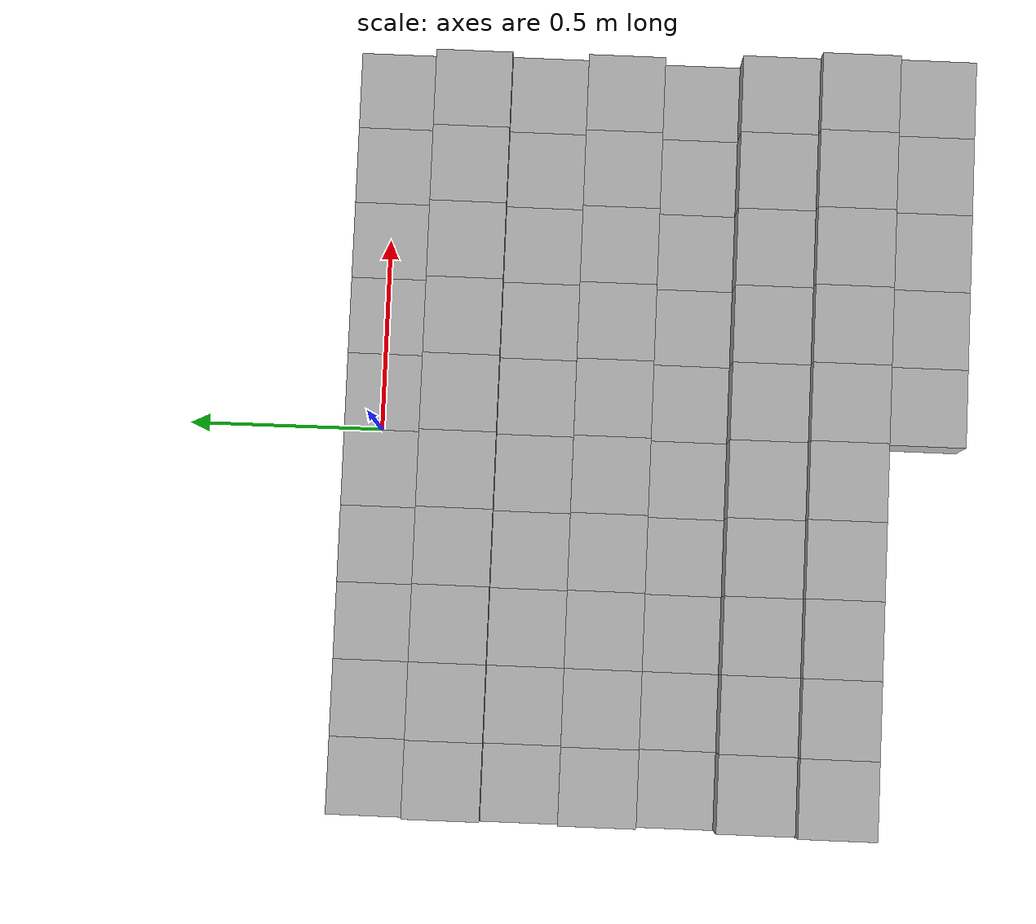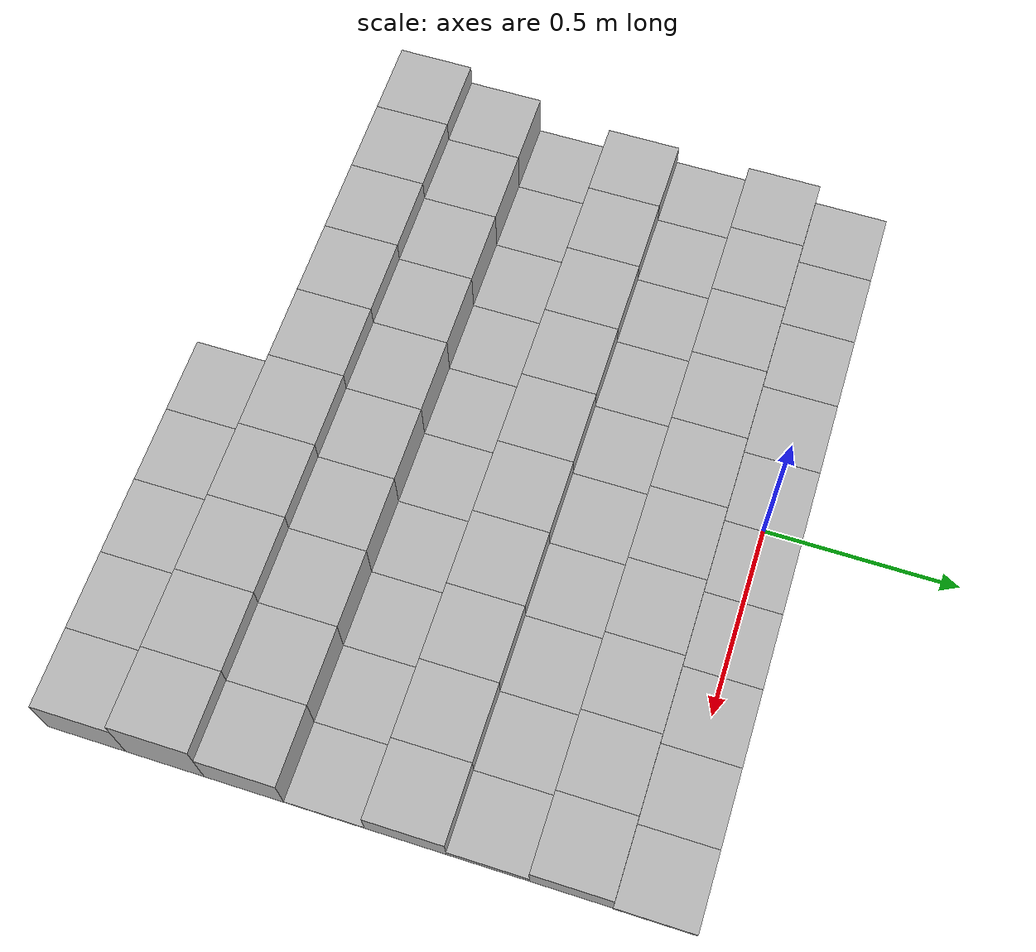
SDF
<sdf version="1.6">
 <model name="Terrain">
  <static>true</static>
  <link name="box_0_0">
   <pose>-0.9 0.0 -0.00379333732444 0 0 0</pose>
   <inertial>
    <mass>1.0</mass>
    <inertia><ixx>0.0</ixx><ixy>0.0</ixy><ixz>0.0</ixz><iyy>0.0</iyy><iyz>0.0</iyz><izz>0.0</izz></inertia>
   </inertial>
   <collision name="collision"><geometry><box><size>0.2 0.2 -0.00758667464888</size></box></geometry></collision>
   <visual name="visual"><geometry><box><size>0.2 0.2 -0.00758667464888</size></box></geometry></visual>
  </link>
  <link name="box_0_1">
   <pose>-0.7 0.0 -0.00379333732444 0 0 0</pose>
   <inertial>
    <mass>1.0</mass>
    <inertia><ixx>0.0</ixx><ixy>0.0</ixy><ixz>0.0</ixz><iyy>0.0</iyy><iyz>0.0</iyz><izz>0.0</izz></inertia>
   </inertial>
   <collision name="collision"><geometry><box><size>0.2 0.2 -0.00758667464888</size></box></geometry></collision>
   <visual name="visual"><geometry><box><size>0.2 0.2 -0.00758667464888</size></box></geometry></visual>
  </link>
  <link name="box_0_2">
   <pose>-0.5 0.0 -0.00379333732444 0 0 0</pose>
   <inertial>
    <mass>1.0</mass>
    <inertia><ixx>0.0</ixx><ixy>0.0</ixy><ixz>0.0</ixz><iyy>0.0</iyy><iyz>0.0</iyz><izz>0.0</izz></inertia>
   </inertial>
   <collision name="collision"><geometry><box><size>0.2 0.2 -0.00758667464888</size></box></geometry></collision>
   <visual name="visual"><geometry><box><size>0.2 0.2 -0.00758667464888</size></box></geometry></visual>
  </link>
  <link name="box_0_3">
   <pose>-0.3 0.0 -0.00379333732444 0 0 0</pose>
   <inertial>
    <mass>1.0</mass>
    <inertia><ixx>0.0</ixx><ixy>0.0</ixy><ixz>0.0</ixz><iyy>0.0</iyy><iyz>0.0</iyz><izz>0.0</izz></inertia>
   </inertial>
   <collision name="collision"><geometry><box><size>0.2 0.2 -0.00758667464888</size></box></geometry></collision>
   <visual name="visual"><geometry><box><size>0.2 0.2 -0.00758667464888</size></box></geometry></visual>
  </link>
  <link name="box_0_4">
   <pose>-0.1 0.0 -0.00379333732444 0 0 0</pose>
   <inertial>
    <mass>1.0</mass>
    <inertia><ixx>0.0</ixx><ixy>0.0</ixy><ixz>0.0</ixz><iyy>0.0</iyy><iyz>0.0</iyz><izz>0.0</izz></inertia>
   </inertial>
   <collision name="collision"><geometry><box><size>0.2 0.2 -0.00758667464888</size></box></geometry></collision>
   <visual name="visual"><geometry><box><size>0.2 0.2 -0.00758667464888</size></box></geometry></visual>
  </link>
  <link name="box_0_5">
   <pose>0.1 0.0 -0.00379333732444 0 0 0</pose>
   <inertial>
    <mass>1.0</mass>
    <inertia><ixx>0.0</ixx><ixy>0.0</ixy><ixz>0.0</ixz><iyy>0.0</iyy><iyz>0.0</iyz><izz>0.0</izz></inertia>
   </inertial>
   <collision name="collision"><geometry><box><size>0.2 0.2 -0.00758667464888</size></box></geometry></collision>
   <visual name="visual"><geometry><box><size>0.2 0.2 -0.00758667464888</size></box></geometry></visual>
  </link>
  <link name="box_0_6">
   <pose>0.3 0.0 -0.00379333732444 0 0 0</pose>
   <inertial>
    <mass>1.0</mass>
    <inertia><ixx>0.0</ixx><ixy>0.0</ixy><ixz>0.0</ixz><iyy>0.0</iyy><iyz>0.0</iyz><izz>0.0</izz></inertia>
   </inertial>
   <collision name="collision"><geometry><box><size>0.2 0.2 -0.00758667464888</size></box></geometry></collision>
   <visual name="visual"><geometry><box><size>0.2 0.2 -0.00758667464888</size></box></geometry></visual>
  </link>
  <link name="box_0_7">
   <pose>0.5 0.0 -0.00379333732444 0 0 0</pose>
   <inertial>
    <mass>1.0</mass>
    <inertia><ixx>0.0</ixx><ixy>0.0</ixy><ixz>0.0</ixz><iyy>0.0</iyy><iyz>0.0</iyz><izz>0.0</izz></inertia>
   </inertial>
   <collision name="collision"><geometry><box><size>0.2 0.2 -0.00758667464888</size></box></geometry></collision>
   <visual name="visual"><geometry><box><size>0.2 0.2 -0.00758667464888</size></box></geometry></visual>
  </link>
  <link name="box_0_8">
   <pose>0.7 0.0 -0.00379333732444 0 0 0</pose>
   <inertial>
    <mass>1.0</mass>
    <inertia><ixx>0.0</ixx><ixy>0.0</ixy><ixz>0.0</ixz><iyy>0.0</iyy><iyz>0.0</iyz><izz>0.0</izz></inertia>
   </inertial>
   <collision name="collision"><geometry><box><size>0.2 0.2 -0.00758667464888</size></box></geometry></collision>
   <visual name="visual"><geometry><box><size>0.2 0.2 -0.00758667464888</size></box></geometry></visual>
  </link>
  <link name="box_0_9">
   <pose>0.9 0.0 -0.00379333732444 0 0 0</pose>
   <inertial>
    <mass>1.0</mass>
    <inertia><ixx>0.0</ixx><ixy>0.0</ixy><ixz>0.0</ixz><iyy>0.0</iyy><iyz>0.0</iyz><izz>0.0</izz></inertia>
   </inertial>
   <collision name="collision"><geometry><box><size>0.2 0.2 -0.00758667464888</size></box></geometry></collision>
   <visual name="visual"><geometry><box><size>0.2 0.2 -0.00758667464888</size></box></geometry></visual>
  </link>
  <link name="box_1_0">
   <pose>-0.9 -0.2 0.0399816601533 0 0 0</pose>
   <inertial>
    <mass>1.0</mass>
    <inertia><ixx>0.0</ixx><ixy>0.0</ixy><ixz>0.0</ixz><iyy>0.0</iyy><iyz>0.0</iyz><izz>0.0</izz></inertia>
   </inertial>
   <collision name="collision"><geometry><box><size>0.2 0.2 0.0799633203066</size></box></geometry></collision>
   <visual name="visual"><geometry><box><size>0.2 0.2 0.0799633203066</size></box></geometry></visual>
  </link>
  <link name="box_1_1">
   <pose>-0.7 -0.2 0.0399816601533 0 0 0</pose>
   <inertial>
    <mass>1.0</mass>
    <inertia><ixx>0.0</ixx><ixy>0.0</ixy><ixz>0.0</ixz><iyy>0.0</iyy><iyz>0.0</iyz><izz>0.0</izz></inertia>
   </inertial>
   <collision name="collision"><geometry><box><size>0.2 0.2 0.0799633203066</size></box></geometry></collision>
   <visual name="visual"><geometry><box><size>0.2 0.2 0.0799633203066</size></box></geometry></visual>
  </link>
  <link name="box_1_2">
   <pose>-0.5 -0.2 0.0399816601533 0 0 0</pose>
   <inertial>
    <mass>1.0</mass>
    <inertia><ixx>0.0</ixx><ixy>0.0</ixy><ixz>0.0</ixz><iyy>0.0</iyy><iyz>0.0</iyz><izz>0.0</izz></inertia>
   </inertial>
   <collision name="collision"><geometry><box><size>0.2 0.2 0.0799633203066</size></box></geometry></collision>
   <visual name="visual"><geometry><box><size>0.2 0.2 0.0799633203066</size></box></geometry></visual>
  </link>
  <link name="box_1_3">
   <pose>-0.3 -0.2 0.0399816601533 0 0 0</pose>
   <inertial>
    <mass>1.0</mass>
    <inertia><ixx>0.0</ixx><ixy>0.0</ixy><ixz>0.0</ixz><iyy>0.0</iyy><iyz>0.0</iyz><izz>0.0</izz></inertia>
   </inertial>
   <collision name="collision"><geometry><box><size>0.2 0.2 0.0799633203066</size></box></geometry></collision>
   <visual name="visual"><geometry><box><size>0.2 0.2 0.0799633203066</size></box></geometry></visual>
  </link>
  <link name="box_1_4">
   <pose>-0.1 -0.2 0.0399816601533 0 0 0</pose>
   <inertial>
    <mass>1.0</mass>
    <inertia><ixx>0.0</ixx><ixy>0.0</ixy><ixz>0.0</ixz><iyy>0.0</iyy><iyz>0.0</iyz><izz>0.0</izz></inertia>
   </inertial>
   <collision name="collision"><geometry><box><size>0.2 0.2 0.0799633203066</size></box></geometry></collision>
   <visual name="visual"><geometry><box><size>0.2 0.2 0.0799633203066</size></box></geometry></visual>
  </link>
  <link name="box_1_5">
   <pose>0.1 -0.2 0.0399816601533 0 0 0</pose>
   <inertial>
    <mass>1.0</mass>
    <inertia><ixx>0.0</ixx><ixy>0.0</ixy><ixz>0.0</ixz><iyy>0.0</iyy><iyz>0.0</iyz><izz>0.0</izz></inertia>
   </inertial>
   <collision name="collision"><geometry><box><size>0.2 0.2 0.0799633203066</size></box></geometry></collision>
   <visual name="visual"><geometry><box><size>0.2 0.2 0.0799633203066</size></box></geometry></visual>
  </link>
  <link name="box_1_6">
   <pose>0.3 -0.2 0.0399816601533 0 0 0</pose>
   <inertial>
    <mass>1.0</mass>
    <inertia><ixx>0.0</ixx><ixy>0.0</ixy><ixz>0.0</ixz><iyy>0.0</iyy><iyz>0.0</iyz><izz>0.0</izz></inertia>
   </inertial>
   <collision name="collision"><geometry><box><size>0.2 0.2 0.0799633203066</size></box></geometry></collision>
   <visual name="visual"><geometry><box><size>0.2 0.2 0.0799633203066</size></box></geometry></visual>
  </link>
  <link name="box_1_7">
   <pose>0.5 -0.2 0.0399816601533 0 0 0</pose>
   <inertial>
    <mass>1.0</mass>
    <inertia><ixx>0.0</ixx><ixy>0.0</ixy><ixz>0.0</ixz><iyy>0.0</iyy><iyz>0.0</iyz><izz>0.0</izz></inertia>
   </inertial>
   <collision name="collision"><geometry><box><size>0.2 0.2 0.0799633203066</size></box></geometry></collision>
   <visual name="visual"><geometry><box><size>0.2 0.2 0.0799633203066</size></box></geometry></visual>
  </link>
  <link name="box_1_8">
   <pose>0.7 -0.2 0.0399816601533 0 0 0</pose>
   <inertial>
    <mass>1.0</mass>
    <inertia><ixx>0.0</ixx><ixy>0.0</ixy><ixz>0.0</ixz><iyy>0.0</iyy><iyz>0.0</iyz><izz>0.0</izz></inertia>
   </inertial>
   <collision name="collision"><geometry><box><size>0.2 0.2 0.0799633203066</size></box></geometry></collision>
   <visual name="visual"><geometry><box><size>0.2 0.2 0.0799633203066</size></box></geometry></visual>
  </link>
  <link name="box_1_9">
   <pose>0.9 -0.2 0.0399816601533 0 0 0</pose>
   <inertial>
    <mass>1.0</mass>
    <inertia><ixx>0.0</ixx><ixy>0.0</ixy><ixz>0.0</ixz><iyy>0.0</iyy><iyz>0.0</iyz><izz>0.0</izz></inertia>
   </inertial>
   <collision name="collision"><geometry><box><size>0.2 0.2 0.0799633203066</size></box></geometry></collision>
   <visual name="visual"><geometry><box><size>0.2 0.2 0.0799633203066</size></box></geometry></visual>
  </link>
  <link name="box_2_0">
   <pose>-0.9 -0.4 0.0114497667127 0 0 0</pose>
   <inertial>
    <mass>1.0</mass>
    <inertia><ixx>0.0</ixx><ixy>0.0</ixy><ixz>0.0</ixz><iyy>0.0</iyy><iyz>0.0</iyz><izz>0.0</izz></inertia>
   </inertial>
   <collision name="collision"><geometry><box><size>0.2 0.2 0.0228995334255</size></box></geometry></collision>
   <visual name="visual"><geometry><box><size>0.2 0.2 0.0228995334255</size></box></geometry></visual>
  </link>
  <link name="box_2_1">
   <pose>-0.7 -0.4 0.0114497667127 0 0 0</pose>
   <inertial>
    <mass>1.0</mass>
    <inertia><ixx>0.0</ixx><ixy>0.0</ixy><ixz>0.0</ixz><iyy>0.0</iyy><iyz>0.0</iyz><izz>0.0</izz></inertia>
   </inertial>
   <collision name="collision"><geometry><box><size>0.2 0.2 0.0228995334255</size></box></geometry></collision>
   <visual name="visual"><geometry><box><size>0.2 0.2 0.0228995334255</size></box></geometry></visual>
  </link>
  <link name="box_2_2">
   <pose>-0.5 -0.4 0.0114497667127 0 0 0</pose>
   <inertial>
    <mass>1.0</mass>
    <inertia><ixx>0.0</ixx><ixy>0.0</ixy><ixz>0.0</ixz><iyy>0.0</iyy><iyz>0.0</iyz><izz>0.0</izz></inertia>
   </inertial>
   <collision name="collision"><geometry><box><size>0.2 0.2 0.0228995334255</size></box></geometry></collision>
   <visual name="visual"><geometry><box><size>0.2 0.2 0.0228995334255</size></box></geometry></visual>
  </link>
  <link name="box_2_3">
   <pose>-0.3 -0.4 0.0114497667127 0 0 0</pose>
   <inertial>
    <mass>1.0</mass>
    <inertia><ixx>0.0</ixx><ixy>0.0</ixy><ixz>0.0</ixz><iyy>0.0</iyy><iyz>0.0</iyz><izz>0.0</izz></inertia>
   </inertial>
   <collision name="collision"><geometry><box><size>0.2 0.2 0.0228995334255</size></box></geometry></collision>
   <visual name="visual"><geometry><box><size>0.2 0.2 0.0228995334255</size></box></geometry></visual>
  </link>
  <link name="box_2_4">
   <pose>-0.1 -0.4 0.0114497667127 0 0 0</pose>
   <inertial>
    <mass>1.0</mass>
    <inertia><ixx>0.0</ixx><ixy>0.0</ixy><ixz>0.0</ixz><iyy>0.0</iyy><iyz>0.0</iyz><izz>0.0</izz></inertia>
   </inertial>
   <collision name="collision"><geometry><box><size>0.2 0.2 0.0228995334255</size></box></geometry></collision>
   <visual name="visual"><geometry><box><size>0.2 0.2 0.0228995334255</size></box></geometry></visual>
  </link>
  <link name="box_2_5">
   <pose>0.1 -0.4 0.0114497667127 0 0 0</pose>
   <inertial>
    <mass>1.0</mass>
    <inertia><ixx>0.0</ixx><ixy>0.0</ixy><ixz>0.0</ixz><iyy>0.0</iyy><iyz>0.0</iyz><izz>0.0</izz></inertia>
   </inertial>
   <collision name="collision"><geometry><box><size>0.2 0.2 0.0228995334255</size></box></geometry></collision>
   <visual name="visual"><geometry><box><size>0.2 0.2 0.0228995334255</size></box></geometry></visual>
  </link>
  <link name="box_2_6">
   <pose>0.3 -0.4 0.0114497667127 0 0 0</pose>
   <inertial>
    <mass>1.0</mass>
    <inertia><ixx>0.0</ixx><ixy>0.0</ixy><ixz>0.0</ixz><iyy>0.0</iyy><iyz>0.0</iyz><izz>0.0</izz></inertia>
   </inertial>
   <collision name="collision"><geometry><box><size>0.2 0.2 0.0228995334255</size></box></geometry></collision>
   <visual name="visual"><geometry><box><size>0.2 0.2 0.0228995334255</size></box></geometry></visual>
  </link>
  <link name="box_2_7">
   <pose>0.5 -0.4 0.0114497667127 0 0 0</pose>
   <inertial>
    <mass>1.0</mass>
    <inertia><ixx>0.0</ixx><ixy>0.0</ixy><ixz>0.0</ixz><iyy>0.0</iyy><iyz>0.0</iyz><izz>0.0</izz></inertia>
   </inertial>
   <collision name="collision"><geometry><box><size>0.2 0.2 0.0228995334255</size></box></geometry></collision>
   <visual name="visual"><geometry><box><size>0.2 0.2 0.0228995334255</size></box></geometry></visual>
  </link>
  <link name="box_2_8">
   <pose>0.7 -0.4 0.0114497667127 0 0 0</pose>
   <inertial>
    <mass>1.0</mass>
    <inertia><ixx>0.0</ixx><ixy>0.0</ixy><ixz>0.0</ixz><iyy>0.0</iyy><iyz>0.0</iyz><izz>0.0</izz></inertia>
   </inertial>
   <collision name="collision"><geometry><box><size>0.2 0.2 0.0228995334255</size></box></geometry></collision>
   <visual name="visual"><geometry><box><size>0.2 0.2 0.0228995334255</size></box></geometry></visual>
  </link>
  <link name="box_2_9">
   <pose>0.9 -0.4 0.0114497667127 0 0 0</pose>
   <inertial>
    <mass>1.0</mass>
    <inertia><ixx>0.0</ixx><ixy>0.0</ixy><ixz>0.0</ixz><iyy>0.0</iyy><iyz>0.0</iyz><izz>0.0</izz></inertia>
   </inertial>
   <collision name="collision"><geometry><box><size>0.2 0.2 0.0228995334255</size></box></geometry></collision>
   <visual name="visual"><geometry><box><size>0.2 0.2 0.0228995334255</size></box></geometry></visual>
  </link>
  <link name="box_3_0">
   <pose>-0.9 -0.6 0.0445621079395 0 0 0</pose>
   <inertial>
    <mass>1.0</mass>
    <inertia><ixx>0.0</ixx><ixy>0.0</ixy><ixz>0.0</ixz><iyy>0.0</iyy><iyz>0.0</iyz><izz>0.0</izz></inertia>
   </inertial>
   <collision name="collision"><geometry><box><size>0.2 0.2 0.089124215879</size></box></geometry></collision>
   <visual name="visual"><geometry><box><size>0.2 0.2 0.089124215879</size></box></geometry></visual>
  </link>
  <link name="box_3_1">
   <pose>-0.7 -0.6 0.0445621079395 0 0 0</pose>
   <inertial>
    <mass>1.0</mass>
    <inertia><ixx>0.0</ixx><ixy>0.0</ixy><ixz>0.0</ixz><iyy>0.0</iyy><iyz>0.0</iyz><izz>0.0</izz></inertia>
   </inertial>
   <collision name="collision"><geometry><box><size>0.2 0.2 0.089124215879</size></box></geometry></collision>
   <visual name="visual"><geometry><box><size>0.2 0.2 0.089124215879</size></box></geometry></visual>
  </link>
  <link name="box_3_2">
   <pose>-0.5 -0.6 0.0445621079395 0 0 0</pose>
   <inertial>
    <mass>1.0</mass>
    <inertia><ixx>0.0</ixx><ixy>0.0</ixy><ixz>0.0</ixz><iyy>0.0</iyy><iyz>0.0</iyz><izz>0.0</izz></inertia>
   </inertial>
   <collision name="collision"><geometry><box><size>0.2 0.2 0.089124215879</size></box></geometry></collision>
   <visual name="visual"><geometry><box><size>0.2 0.2 0.089124215879</size></box></geometry></visual>
  </link>
  <link name="box_3_3">
   <pose>-0.3 -0.6 0.0445621079395 0 0 0</pose>
   <inertial>
    <mass>1.0</mass>
    <inertia><ixx>0.0</ixx><ixy>0.0</ixy><ixz>0.0</ixz><iyy>0.0</iyy><iyz>0.0</iyz><izz>0.0</izz></inertia>
   </inertial>
   <collision name="collision"><geometry><box><size>0.2 0.2 0.089124215879</size></box></geometry></collision>
   <visual name="visual"><geometry><box><size>0.2 0.2 0.089124215879</size></box></geometry></visual>
  </link>
  <link name="box_3_4">
   <pose>-0.1 -0.6 0.0445621079395 0 0 0</pose>
   <inertial>
    <mass>1.0</mass>
    <inertia><ixx>0.0</ixx><ixy>0.0</ixy><ixz>0.0</ixz><iyy>0.0</iyy><iyz>0.0</iyz><izz>0.0</izz></inertia>
   </inertial>
   <collision name="collision"><geometry><box><size>0.2 0.2 0.089124215879</size></box></geometry></collision>
   <visual name="visual"><geometry><box><size>0.2 0.2 0.089124215879</size></box></geometry></visual>
  </link>
  <link name="box_3_5">
   <pose>0.1 -0.6 0.0445621079395 0 0 0</pose>
   <inertial>
    <mass>1.0</mass>
    <inertia><ixx>0.0</ixx><ixy>0.0</ixy><ixz>0.0</ixz><iyy>0.0</iyy><iyz>0.0</iyz><izz>0.0</izz></inertia>
   </inertial>
   <collision name="collision"><geometry><box><size>0.2 0.2 0.089124215879</size></box></geometry></collision>
   <visual name="visual"><geometry><box><size>0.2 0.2 0.089124215879</size></box></geometry></visual>
  </link>
  <link name="box_3_6">
   <pose>0.3 -0.6 0.0445621079395 0 0 0</pose>
   <inertial>
    <mass>1.0</mass>
    <inertia><ixx>0.0</ixx><ixy>0.0</ixy><ixz>0.0</ixz><iyy>0.0</iyy><iyz>0.0</iyz><izz>0.0</izz></inertia>
   </inertial>
   <collision name="collision"><geometry><box><size>0.2 0.2 0.089124215879</size></box></geometry></collision>
   <visual name="visual"><geometry><box><size>0.2 0.2 0.089124215879</size></box></geometry></visual>
  </link>
  <link name="box_3_7">
   <pose>0.5 -0.6 0.0445621079395 0 0 0</pose>
   <inertial>
    <mass>1.0</mass>
    <inertia><ixx>0.0</ixx><ixy>0.0</ixy><ixz>0.0</ixz><iyy>0.0</iyy><iyz>0.0</iyz><izz>0.0</izz></inertia>
   </inertial>
   <collision name="collision"><geometry><box><size>0.2 0.2 0.089124215879</size></box></geometry></collision>
   <visual name="visual"><geometry><box><size>0.2 0.2 0.089124215879</size></box></geometry></visual>
  </link>
  <link name="box_3_8">
   <pose>0.7 -0.6 0.0445621079395 0 0 0</pose>
   <inertial>
    <mass>1.0</mass>
    <inertia><ixx>0.0</ixx><ixy>0.0</ixy><ixz>0.0</ixz><iyy>0.0</iyy><iyz>0.0</iyz><izz>0.0</izz></inertia>
   </inertial>
   <collision name="collision"><geometry><box><size>0.2 0.2 0.089124215879</size></box></geometry></collision>
   <visual name="visual"><geometry><box><size>0.2 0.2 0.089124215879</size></box></geometry></visual>
  </link>
  <link name="box_3_9">
   <pose>0.9 -0.6 0.0445621079395 0 0 0</pose>
   <inertial>
    <mass>1.0</mass>
    <inertia><ixx>0.0</ixx><ixy>0.0</ixy><ixz>0.0</ixz><iyy>0.0</iyy><iyz>0.0</iyz><izz>0.0</izz></inertia>
   </inertial>
   <collision name="collision"><geometry><box><size>0.2 0.2 0.089124215879</size></box></geometry></collision>
   <visual name="visual"><geometry><box><size>0.2 0.2 0.089124215879</size></box></geometry></visual>
  </link>
  <link name="box_4_0">
   <pose>-0.9 -0.8 0.00307163410576 0 0 0</pose>
   <inertial>
    <mass>1.0</mass>
    <inertia><ixx>0.0</ixx><ixy>0.0</ixy><ixz>0.0</ixz><iyy>0.0</iyy><iyz>0.0</iyz><izz>0.0</izz></inertia>
   </inertial>
   <collision name="collision"><geometry><box><size>0.2 0.2 0.00614326821152</size></box></geometry></collision>
   <visual name="visual"><geometry><box><size>0.2 0.2 0.00614326821152</size></box></geometry></visual>
  </link>
  <link name="box_4_1">
   <pose>-0.7 -0.8 0.00307163410576 0 0 0</pose>
   <inertial>
    <mass>1.0</mass>
    <inertia><ixx>0.0</ixx><ixy>0.0</ixy><ixz>0.0</ixz><iyy>0.0</iyy><iyz>0.0</iyz><izz>0.0</izz></inertia>
   </inertial>
   <collision name="collision"><geometry><box><size>0.2 0.2 0.00614326821152</size></box></geometry></collision>
   <visual name="visual"><geometry><box><size>0.2 0.2 0.00614326821152</size></box></geometry></visual>
  </link>
  <link name="box_4_2">
   <pose>-0.5 -0.8 0.00307163410576 0 0 0</pose>
   <inertial>
    <mass>1.0</mass>
    <inertia><ixx>0.0</ixx><ixy>0.0</ixy><ixz>0.0</ixz><iyy>0.0</iyy><iyz>0.0</iyz><izz>0.0</izz></inertia>
   </inertial>
   <collision name="collision"><geometry><box><size>0.2 0.2 0.00614326821152</size></box></geometry></collision>
   <visual name="visual"><geometry><box><size>0.2 0.2 0.00614326821152</size></box></geometry></visual>
  </link>
  <link name="box_4_3">
   <pose>-0.3 -0.8 0.00307163410576 0 0 0</pose>
   <inertial>
    <mass>1.0</mass>
    <inertia><ixx>0.0</ixx><ixy>0.0</ixy><ixz>0.0</ixz><iyy>0.0</iyy><iyz>0.0</iyz><izz>0.0</izz></inertia>
   </inertial>
   <collision name="collision"><geometry><box><size>0.2 0.2 0.00614326821152</size></box></geometry></collision>
   <visual name="visual"><geometry><box><size>0.2 0.2 0.00614326821152</size></box></geometry></visual>
  </link>
  <link name="box_4_4">
   <pose>-0.1 -0.8 0.00307163410576 0 0 0</pose>
   <inertial>
    <mass>1.0</mass>
    <inertia><ixx>0.0</ixx><ixy>0.0</ixy><ixz>0.0</ixz><iyy>0.0</iyy><iyz>0.0</iyz><izz>0.0</izz></inertia>
   </inertial>
   <collision name="collision"><geometry><box><size>0.2 0.2 0.00614326821152</size></box></geometry></collision>
   <visual name="visual"><geometry><box><size>0.2 0.2 0.00614326821152</size></box></geometry></visual>
  </link>
  <link name="box_4_5">
   <pose>0.1 -0.8 0.00307163410576 0 0 0</pose>
   <inertial>
    <mass>1.0</mass>
    <inertia><ixx>0.0</ixx><ixy>0.0</ixy><ixz>0.0</ixz><iyy>0.0</iyy><iyz>0.0</iyz><izz>0.0</izz></inertia>
   </inertial>
   <collision name="collision"><geometry><box><size>0.2 0.2 0.00614326821152</size></box></geometry></collision>
   <visual name="visual"><geometry><box><size>0.2 0.2 0.00614326821152</size></box></geometry></visual>
  </link>
  <link name="box_4_6">
   <pose>0.3 -0.8 0.00307163410576 0 0 0</pose>
   <inertial>
    <mass>1.0</mass>
    <inertia><ixx>0.0</ixx><ixy>0.0</ixy><ixz>0.0</ixz><iyy>0.0</iyy><iyz>0.0</iyz><izz>0.0</izz></inertia>
   </inertial>
   <collision name="collision"><geometry><box><size>0.2 0.2 0.00614326821152</size></box></geometry></collision>
   <visual name="visual"><geometry><box><size>0.2 0.2 0.00614326821152</size></box></geometry></visual>
  </link>
  <link name="box_4_7">
   <pose>0.5 -0.8 0.00307163410576 0 0 0</pose>
   <inertial>
    <mass>1.0</mass>
    <inertia><ixx>0.0</ixx><ixy>0.0</ixy><ixz>0.0</ixz><iyy>0.0</iyy><iyz>0.0</iyz><izz>0.0</izz></inertia>
   </inertial>
   <collision name="collision"><geometry><box><size>0.2 0.2 0.00614326821152</size></box></geometry></collision>
   <visual name="visual"><geometry><box><size>0.2 0.2 0.00614326821152</size></box></geometry></visual>
  </link>
  <link name="box_4_8">
   <pose>0.7 -0.8 0.00307163410576 0 0 0</pose>
   <inertial>
    <mass>1.0</mass>
    <inertia><ixx>0.0</ixx><ixy>0.0</ixy><ixz>0.0</ixz><iyy>0.0</iyy><iyz>0.0</iyz><izz>0.0</izz></inertia>
   </inertial>
   <collision name="collision"><geometry><box><size>0.2 0.2 0.00614326821152</size></box></geometry></collision>
   <visual name="visual"><geometry><box><size>0.2 0.2 0.00614326821152</size></box></geometry></visual>
  </link>
  <link name="box_4_9">
   <pose>0.9 -0.8 0.00307163410576 0 0 0</pose>
   <inertial>
    <mass>1.0</mass>
    <inertia><ixx>0.0</ixx><ixy>0.0</ixy><ixz>0.0</ixz><iyy>0.0</iyy><iyz>0.0</iyz><izz>0.0</izz></inertia>
   </inertial>
   <collision name="collision"><geometry><box><size>0.2 0.2 0.00614326821152</size></box></geometry></collision>
   <visual name="visual"><geometry><box><size>0.2 0.2 0.00614326821152</size></box></geometry></visual>
  </link>
  <link name="box_5_0">
   <pose>-0.9 -1.0 0.0714742946082 0 0 0</pose>
   <inertial>
    <mass>1.0</mass>
    <inertia><ixx>0.0</ixx><ixy>0.0</ixy><ixz>0.0</ixz><iyy>0.0</iyy><iyz>0.0</iyz><izz>0.0</izz></inertia>
   </inertial>
   <collision name="collision"><geometry><box><size>0.2 0.2 0.142948589216</size></box></geometry></collision>
   <visual name="visual"><geometry><box><size>0.2 0.2 0.142948589216</size></box></geometry></visual>
  </link>
  <link name="box_5_1">
   <pose>-0.7 -1.0 0.0714742946082 0 0 0</pose>
   <inertial>
    <mass>1.0</mass>
    <inertia><ixx>0.0</ixx><ixy>0.0</ixy><ixz>0.0</ixz><iyy>0.0</iyy><iyz>0.0</iyz><izz>0.0</izz></inertia>
   </inertial>
   <collision name="collision"><geometry><box><size>0.2 0.2 0.142948589216</size></box></geometry></collision>
   <visual name="visual"><geometry><box><size>0.2 0.2 0.142948589216</size></box></geometry></visual>
  </link>
  <link name="box_5_2">
   <pose>-0.5 -1.0 0.0714742946082 0 0 0</pose>
   <inertial>
    <mass>1.0</mass>
    <inertia><ixx>0.0</ixx><ixy>0.0</ixy><ixz>0.0</ixz><iyy>0.0</iyy><iyz>0.0</iyz><izz>0.0</izz></inertia>
   </inertial>
   <collision name="collision"><geometry><box><size>0.2 0.2 0.142948589216</size></box></geometry></collision>
   <visual name="visual"><geometry><box><size>0.2 0.2 0.142948589216</size></box></geometry></visual>
  </link>
  <link name="box_5_3">
   <pose>-0.3 -1.0 0.0714742946082 0 0 0</pose>
   <inertial>
    <mass>1.0</mass>
    <inertia><ixx>0.0</ixx><ixy>0.0</ixy><ixz>0.0</ixz><iyy>0.0</iyy><iyz>0.0</iyz><izz>0.0</izz></inertia>
   </inertial>
   <collision name="collision"><geometry><box><size>0.2 0.2 0.142948589216</size></box></geometry></collision>
   <visual name="visual"><geometry><box><size>0.2 0.2 0.142948589216</size></box></geometry></visual>
  </link>
  <link name="box_5_4">
   <pose>-0.1 -1.0 0.0714742946082 0 0 0</pose>
   <inertial>
    <mass>1.0</mass>
    <inertia><ixx>0.0</ixx><ixy>0.0</ixy><ixz>0.0</ixz><iyy>0.0</iyy><iyz>0.0</iyz><izz>0.0</izz></inertia>
   </inertial>
   <collision name="collision"><geometry><box><size>0.2 0.2 0.142948589216</size></box></geometry></collision>
   <visual name="visual"><geometry><box><size>0.2 0.2 0.142948589216</size></box></geometry></visual>
  </link>
  <link name="box_5_5">
   <pose>0.1 -1.0 0.0714742946082 0 0 0</pose>
   <inertial>
    <mass>1.0</mass>
    <inertia><ixx>0.0</ixx><ixy>0.0</ixy><ixz>0.0</ixz><iyy>0.0</iyy><iyz>0.0</iyz><izz>0.0</izz></inertia>
   </inertial>
   <collision name="collision"><geometry><box><size>0.2 0.2 0.142948589216</size></box></geometry></collision>
   <visual name="visual"><geometry><box><size>0.2 0.2 0.142948589216</size></box></geometry></visual>
  </link>
  <link name="box_5_6">
   <pose>0.3 -1.0 0.0714742946082 0 0 0</pose>
   <inertial>
    <mass>1.0</mass>
    <inertia><ixx>0.0</ixx><ixy>0.0</ixy><ixz>0.0</ixz><iyy>0.0</iyy><iyz>0.0</iyz><izz>0.0</izz></inertia>
   </inertial>
   <collision name="collision"><geometry><box><size>0.2 0.2 0.142948589216</size></box></geometry></collision>
   <visual name="visual"><geometry><box><size>0.2 0.2 0.142948589216</size></box></geometry></visual>
  </link>
  <link name="box_5_7">
   <pose>0.5 -1.0 0.0714742946082 0 0 0</pose>
   <inertial>
    <mass>1.0</mass>
    <inertia><ixx>0.0</ixx><ixy>0.0</ixy><ixz>0.0</ixz><iyy>0.0</iyy><iyz>0.0</iyz><izz>0.0</izz></inertia>
   </inertial>
   <collision name="collision"><geometry><box><size>0.2 0.2 0.142948589216</size></box></geometry></collision>
   <visual name="visual"><geometry><box><size>0.2 0.2 0.142948589216</size></box></geometry></visual>
  </link>
  <link name="box_5_8">
   <pose>0.7 -1.0 0.0714742946082 0 0 0</pose>
   <inertial>
    <mass>1.0</mass>
    <inertia><ixx>0.0</ixx><ixy>0.0</ixy><ixz>0.0</ixz><iyy>0.0</iyy><iyz>0.0</iyz><izz>0.0</izz></inertia>
   </inertial>
   <collision name="collision"><geometry><box><size>0.2 0.2 0.142948589216</size></box></geometry></collision>
   <visual name="visual"><geometry><box><size>0.2 0.2 0.142948589216</size></box></geometry></visual>
  </link>
  <link name="box_5_9">
   <pose>0.9 -1.0 0.0714742946082 0 0 0</pose>
   <inertial>
    <mass>1.0</mass>
    <inertia><ixx>0.0</ixx><ixy>0.0</ixy><ixz>0.0</ixz><iyy>0.0</iyy><iyz>0.0</iyz><izz>0.0</izz></inertia>
   </inertial>
   <collision name="collision"><geometry><box><size>0.2 0.2 0.142948589216</size></box></geometry></collision>
   <visual name="visual"><geometry><box><size>0.2 0.2 0.142948589216</size></box></geometry></visual>
  </link>
  <link name="box_6_0">
   <pose>-0.9 -1.2 0.104750654553 0 0 0</pose>
   <inertial>
    <mass>1.0</mass>
    <inertia><ixx>0.0</ixx><ixy>0.0</ixy><ixz>0.0</ixz><iyy>0.0</iyy><iyz>0.0</iyz><izz>0.0</izz></inertia>
   </inertial>
   <collision name="collision"><geometry><box><size>0.2 0.2 0.209501309107</size></box></geometry></collision>
   <visual name="visual"><geometry><box><size>0.2 0.2 0.209501309107</size></box></geometry></visual>
  </link>
  <link name="box_6_1">
   <pose>-0.7 -1.2 0.104750654553 0 0 0</pose>
   <inertial>
    <mass>1.0</mass>
    <inertia><ixx>0.0</ixx><ixy>0.0</ixy><ixz>0.0</ixz><iyy>0.0</iyy><iyz>0.0</iyz><izz>0.0</izz></inertia>
   </inertial>
   <collision name="collision"><geometry><box><size>0.2 0.2 0.209501309107</size></box></geometry></collision>
   <visual name="visual"><geometry><box><size>0.2 0.2 0.209501309107</size></box></geometry></visual>
  </link>
  <link name="box_6_2">
   <pose>-0.5 -1.2 0.104750654553 0 0 0</pose>
   <inertial>
    <mass>1.0</mass>
    <inertia><ixx>0.0</ixx><ixy>0.0</ixy><ixz>0.0</ixz><iyy>0.0</iyy><iyz>0.0</iyz><izz>0.0</izz></inertia>
   </inertial>
   <collision name="collision"><geometry><box><size>0.2 0.2 0.209501309107</size></box></geometry></collision>
   <visual name="visual"><geometry><box><size>0.2 0.2 0.209501309107</size></box></geometry></visual>
  </link>
  <link name="box_6_3">
   <pose>-0.3 -1.2 0.104750654553 0 0 0</pose>
   <inertial>
    <mass>1.0</mass>
    <inertia><ixx>0.0</ixx><ixy>0.0</ixy><ixz>0.0</ixz><iyy>0.0</iyy><iyz>0.0</iyz><izz>0.0</izz></inertia>
   </inertial>
   <collision name="collision"><geometry><box><size>0.2 0.2 0.209501309107</size></box></geometry></collision>
   <visual name="visual"><geometry><box><size>0.2 0.2 0.209501309107</size></box></geometry></visual>
  </link>
  <link name="box_6_4">
   <pose>-0.1 -1.2 0.104750654553 0 0 0</pose>
   <inertial>
    <mass>1.0</mass>
    <inertia><ixx>0.0</ixx><ixy>0.0</ixy><ixz>0.0</ixz><iyy>0.0</iyy><iyz>0.0</iyz><izz>0.0</izz></inertia>
   </inertial>
   <collision name="collision"><geometry><box><size>0.2 0.2 0.209501309107</size></box></geometry></collision>
   <visual name="visual"><geometry><box><size>0.2 0.2 0.209501309107</size></box></geometry></visual>
  </link>
  <link name="box_6_5">
   <pose>0.1 -1.2 0.104750654553 0 0 0</pose>
   <inertial>
    <mass>1.0</mass>
    <inertia><ixx>0.0</ixx><ixy>0.0</ixy><ixz>0.0</ixz><iyy>0.0</iyy><iyz>0.0</iyz><izz>0.0</izz></inertia>
   </inertial>
   <collision name="collision"><geometry><box><size>0.2 0.2 0.209501309107</size></box></geometry></collision>
   <visual name="visual"><geometry><box><size>0.2 0.2 0.209501309107</size></box></geometry></visual>
  </link>
  <link name="box_6_6">
   <pose>0.3 -1.2 0.104750654553 0 0 0</pose>
   <inertial>
    <mass>1.0</mass>
    <inertia><ixx>0.0</ixx><ixy>0.0</ixy><ixz>0.0</ixz><iyy>0.0</iyy><iyz>0.0</iyz><izz>0.0</izz></inertia>
   </inertial>
   <collision name="collision"><geometry><box><size>0.2 0.2 0.209501309107</size></box></geometry></collision>
   <visual name="visual"><geometry><box><size>0.2 0.2 0.209501309107</size></box></geometry></visual>
  </link>
  <link name="box_6_7">
   <pose>0.5 -1.2 0.104750654553 0 0 0</pose>
   <inertial>
    <mass>1.0</mass>
    <inertia><ixx>0.0</ixx><ixy>0.0</ixy><ixz>0.0</ixz><iyy>0.0</iyy><iyz>0.0</iyz><izz>0.0</izz></inertia>
   </inertial>
   <collision name="collision"><geometry><box><size>0.2 0.2 0.209501309107</size></box></geometry></collision>
   <visual name="visual"><geometry><box><size>0.2 0.2 0.209501309107</size></box></geometry></visual>
  </link>
  <link name="box_6_8">
   <pose>0.7 -1.2 0.104750654553 0 0 0</pose>
   <inertial>
    <mass>1.0</mass>
    <inertia><ixx>0.0</ixx><ixy>0.0</ixy><ixz>0.0</ixz><iyy>0.0</iyy><iyz>0.0</iyz><izz>0.0</izz></inertia>
   </inertial>
   <collision name="collision"><geometry><box><size>0.2 0.2 0.209501309107</size></box></geometry></collision>
   <visual name="visual"><geometry><box><size>0.2 0.2 0.209501309107</size></box></geometry></visual>
  </link>
  <link name="box_6_9">
   <pose>0.9 -1.2 0.104750654553 0 0 0</pose>
   <inertial>
    <mass>1.0</mass>
    <inertia><ixx>0.0</ixx><ixy>0.0</ixy><ixz>0.0</ixz><iyy>0.0</iyy><iyz>0.0</iyz><izz>0.0</izz></inertia>
   </inertial>
   <collision name="collision"><geometry><box><size>0.2 0.2 0.209501309107</size></box></geometry></collision>
   <visual name="visual"><geometry><box><size>0.2 0.2 0.209501309107</size></box></geometry></visual>
  </link>
  <link name="box_7_5">
   <pose>0.1 -1.4 0.0830524998961 0 0 0</pose>
   <inertial>
    <mass>1.0</mass>
    <inertia><ixx>0.0</ixx><ixy>0.0</ixy><ixz>0.0</ixz><iyy>0.0</iyy><iyz>0.0</iyz><izz>0.0</izz></inertia>
   </inertial>
   <collision name="collision"><geometry><box><size>0.2 0.2 0.166104999792</size></box></geometry></collision>
   <visual name="visual"><geometry><box><size>0.2 0.2 0.166104999792</size></box></geometry></visual>
  </link>
  <link name="box_7_6">
   <pose>0.3 -1.4 0.0830524998961 0 0 0</pose>
   <inertial>
    <mass>1.0</mass>
    <inertia><ixx>0.0</ixx><ixy>0.0</ixy><ixz>0.0</ixz><iyy>0.0</iyy><iyz>0.0</iyz><izz>0.0</izz></inertia>
   </inertial>
   <collision name="collision"><geometry><box><size>0.2 0.2 0.166104999792</size></box></geometry></collision>
   <visual name="visual"><geometry><box><size>0.2 0.2 0.166104999792</size></box></geometry></visual>
  </link>
  <link name="box_7_7">
   <pose>0.5 -1.4 0.0830524998961 0 0 0</pose>
   <inertial>
    <mass>1.0</mass>
    <inertia><ixx>0.0</ixx><ixy>0.0</ixy><ixz>0.0</ixz><iyy>0.0</iyy><iyz>0.0</iyz><izz>0.0</izz></inertia>
   </inertial>
   <collision name="collision"><geometry><box><size>0.2 0.2 0.166104999792</size></box></geometry></collision>
   <visual name="visual"><geometry><box><size>0.2 0.2 0.166104999792</size></box></geometry></visual>
  </link>
  <link name="box_7_8">
   <pose>0.7 -1.4 0.0830524998961 0 0 0</pose>
   <inertial>
    <mass>1.0</mass>
    <inertia><ixx>0.0</ixx><ixy>0.0</ixy><ixz>0.0</ixz><iyy>0.0</iyy><iyz>0.0</iyz><izz>0.0</izz></inertia>
   </inertial>
   <collision name="collision"><geometry><box><size>0.2 0.2 0.166104999792</size></box></geometry></collision>
   <visual name="visual"><geometry><box><size>0.2 0.2 0.166104999792</size></box></geometry></visual>
  </link>
  <link name="box_7_9">
   <pose>0.9 -1.4 0.0830524998961 0 0 0</pose>
   <inertial>
    <mass>1.0</mass>
    <inertia><ixx>0.0</ixx><ixy>0.0</ixy><ixz>0.0</ixz><iyy>0.0</iyy><iyz>0.0</iyz><izz>0.0</izz></inertia>
   </inertial>
   <collision name="collision"><geometry><box><size>0.2 0.2 0.166104999792</size></box></geometry></collision>
   <visual name="visual"><geometry><box><size>0.2 0.2 0.166104999792</size></box></geometry></visual>
  </link>
 </model>
</sdf>
